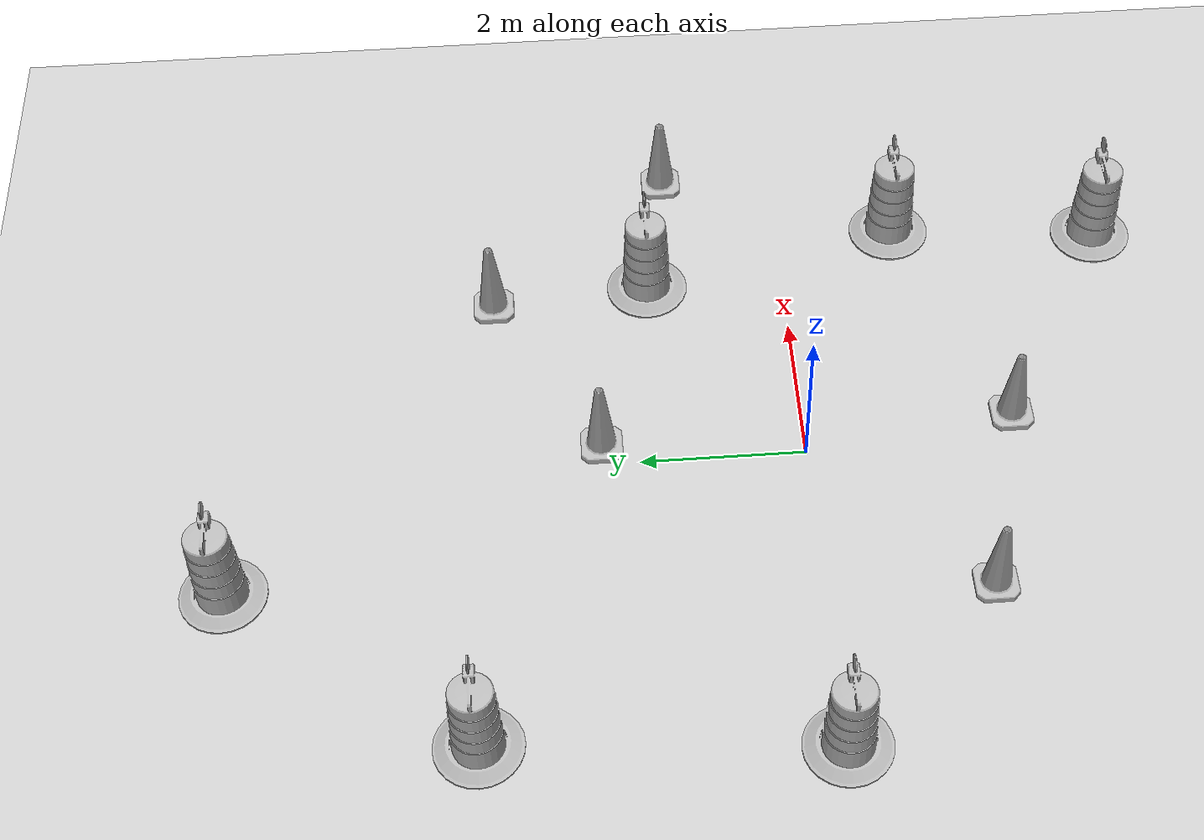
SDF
<sdf version="1.7">
 <world name="default">
  <light name="sun" type="directional">
   <pose>0 0 10 0 -0 0</pose>
   <diffuse>0.8 0.8 0.8 1</diffuse>
   <specular>0.2 0.2 0.2 1</specular>
   <attenuation>
    <range>1000</range>
    <constant>0.9</constant>
    <linear>0.01</linear>
    <quadratic>0.001</quadratic>
   </attenuation>
   <direction>-0.5 0.1 -0.9</direction>
   <spot><inner_angle>0</inner_angle><outer_angle>0</outer_angle><falloff>0</falloff></spot>
  </light>
  <model name="ground_plane">
   <static>1</static>
   <link name="link">
    <collision name="collision">
     <geometry><plane><normal>0 0 1</normal><size>100 100</size></plane></geometry>
     <surface>
      <contact><collide_bitmask>65535</collide_bitmask></contact>
      <friction><ode><mu>100</mu><mu2>50</mu2></ode></friction>
     </surface>
    </collision>
    <visual name="visual">
     <cast_shadows>0</cast_shadows>
     <geometry><plane><normal>0 0 1</normal><size>100 100</size></plane></geometry>
     <material>
      <script><uri>file://media/materials/scripts/gazebo.material</uri><name>Gazebo/Grey</name></script>
     </material>
    </visual>
   </link>
  </model>
  <gravity>0 0 -9.8</gravity>
  <magnetic_field>6e-06 2.3e-05 -4.2e-05</magnetic_field>
  <atmosphere type="adiabatic"/>
  <physics type="ode">
   <max_step_size>0.001</max_step_size>
   <real_time_factor>1</real_time_factor>
   <real_time_update_rate>1000</real_time_update_rate>
  </physics>
  <scene><ambient>0.4 0.4 0.4 1</ambient><background>0.7 0.7 0.7 1</background><shadows>1</shadows></scene>
  <spherical_coordinates>
   <surface_model>EARTH_WGS84</surface_model>
   <latitude_deg>0</latitude_deg>
   <longitude_deg>0</longitude_deg>
   <elevation>0</elevation>
   <heading_deg>0</heading_deg>
  </spherical_coordinates>
  <model name="Construction Cone">
   <link name="link">
    <collision name="collision">
     <geometry>
      <mesh><scale>10 10 10</scale><uri>model://construction_cone/meshes/construction_cone.dae</uri></mesh>
     </geometry>
    </collision>
    <visual name="visual">
     <geometry>
      <mesh><scale>10 10 10</scale><uri>model://construction_cone/meshes/construction_cone.dae</uri></mesh>
     </geometry>
    </visual>
    <inertial>
     <inertia><ixx>1</ixx><ixy>0</ixy><ixz>0</ixz><iyy>1</iyy><iyz>0</iyz><izz>1</izz></inertia>
     <mass>1</mass>
    </inertial>
   </link>
   <pose>2.59299 3.70331 0 0 -0 0</pose>
  </model>
  <model name="Construction Cone_0">
   <link name="link">
    <collision name="collision">
     <geometry>
      <mesh><scale>10 10 10</scale><uri>model://construction_cone/meshes/construction_cone.dae</uri></mesh>
     </geometry>
    </collision>
    <visual name="visual">
     <geometry>
      <mesh><scale>10 10 10</scale><uri>model://construction_cone/meshes/construction_cone.dae</uri></mesh>
     </geometry>
    </visual>
    <inertial>
     <inertia><ixx>1</ixx><ixy>0</ixy><ixz>0</ixz><iyy>1</iyy><iyz>0</iyz><izz>1</izz></inertia>
     <mass>1</mass>
    </inertial>
   </link>
   <pose>0.279163 2.45162 0 0 -0 0</pose>
  </model>
  <model name="Construction Barrel">
   <link name="link">
    <inertial>
     <pose>0 0 0.4 0 -0 0</pose>
     <mass>500</mass>
     <inertia><ixx>51.2096</ixx><iyy>51.2096</iyy><izz>25</izz><ixy>0</ixy><ixz>0</ixz><iyz>0</iyz></inertia>
    </inertial>
    <collision name="collision">
     <geometry><mesh><uri>model://construction_barrel/meshes/construction_barrel.dae</uri></mesh></geometry>
    </collision>
    <visual name="visual">
     <geometry><mesh><uri>model://construction_barrel/meshes/construction_barrel.dae</uri></mesh></geometry>
    </visual>
   </link>
   <pose>3.53211 -1.48402 0 0 -0 0</pose>
  </model>
  <model name="Construction Cone_clone">
   <link name="link">
    <collision name="collision">
     <geometry>
      <mesh><scale>10 10 10</scale><uri>model://construction_cone/meshes/construction_cone.dae</uri></mesh>
     </geometry>
    </collision>
    <visual name="visual">
     <geometry>
      <mesh><scale>10 10 10</scale><uri>model://construction_cone/meshes/construction_cone.dae</uri></mesh>
     </geometry>
    </visual>
    <inertial>
     <inertia><ixx>1</ixx><ixy>0</ixy><ixz>0</ixz><iyy>1</iyy><iyz>0</iyz><izz>1</izz></inertia>
     <mass>1</mass>
    </inertial>
   </link>
   <pose>4.60863 1.44109 0 0 -0 0</pose>
  </model>
  <model name="Construction Cone_clone_0">
   <link name="link">
    <collision name="collision">
     <geometry>
      <mesh><scale>10 10 10</scale><uri>model://construction_cone/meshes/construction_cone.dae</uri></mesh>
     </geometry>
    </collision>
    <visual name="visual">
     <geometry>
      <mesh><scale>10 10 10</scale><uri>model://construction_cone/meshes/construction_cone.dae</uri></mesh>
     </geometry>
    </visual>
    <inertial>
     <inertia><ixx>1</ixx><ixy>0</ixy><ixz>0</ixz><iyy>1</iyy><iyz>0</iyz><izz>1</izz></inertia>
     <mass>1</mass>
    </inertial>
   </link>
   <pose>-2.04887 -1.95717 0 0 -0 0</pose>
  </model>
  <model name="Construction Cone_clone_1">
   <link name="link">
    <collision name="collision">
     <geometry>
      <mesh><scale>10 10 10</scale><uri>model://construction_cone/meshes/construction_cone.dae</uri></mesh>
     </geometry>
    </collision>
    <visual name="visual">
     <geometry>
      <mesh><scale>10 10 10</scale><uri>model://construction_cone/meshes/construction_cone.dae</uri></mesh>
     </geometry>
    </visual>
    <inertial>
     <inertia><ixx>1</ixx><ixy>0</ixy><ixz>0</ixz><iyy>1</iyy><iyz>0</iyz><izz>1</izz></inertia>
     <mass>1</mass>
    </inertial>
   </link>
   <pose>0.389362 -2.56594 0 0 -0 0</pose>
  </model>
  <model name="Construction Barrel_clone">
   <link name="link">
    <inertial>
     <pose>0 0 0.4 0 -0 0</pose>
     <mass>500</mass>
     <inertia><ixx>51.2096</ixx><iyy>51.2096</iyy><izz>25</izz><ixy>0</ixy><ixz>0</ixz><iyz>0</iyz></inertia>
    </inertial>
    <collision name="collision">
     <geometry><mesh><uri>model://construction_barrel/meshes/construction_barrel.dae</uri></mesh></geometry>
    </collision>
    <visual name="visual">
     <geometry><mesh><uri>model://construction_barrel/meshes/construction_barrel.dae</uri></mesh></geometry>
    </visual>
   </link>
   <pose>2.78529 1.74149 0 0 -0 0</pose>
  </model>
  <model name="Construction Barrel_clone_0">
   <link name="link">
    <inertial>
     <pose>0 0 0.4 0 -0 0</pose>
     <mass>500</mass>
     <inertia><ixx>51.2096</ixx><iyy>51.2096</iyy><izz>25</izz><ixy>0</ixy><ixz>0</ixz><iyz>0</iyz></inertia>
    </inertial>
    <collision name="collision">
     <geometry><mesh><uri>model://construction_barrel/meshes/construction_barrel.dae</uri></mesh></geometry>
    </collision>
    <visual name="visual">
     <geometry><mesh><uri>model://construction_barrel/meshes/construction_barrel.dae</uri></mesh></geometry>
    </visual>
   </link>
   <pose>-3.70167 3.99554 0 0 -0 0</pose>
  </model>
  <model name="Construction Barrel_clone_1">
   <link name="link">
    <inertial>
     <pose>0 0 0.4 0 -0 0</pose>
     <mass>500</mass>
     <inertia><ixx>51.2096</ixx><iyy>51.2096</iyy><izz>25</izz><ixy>0</ixy><ixz>0</ixz><iyz>0</iyz></inertia>
    </inertial>
    <collision name="collision">
     <geometry><mesh><uri>model://construction_barrel/meshes/construction_barrel.dae</uri></mesh></geometry>
    </collision>
    <visual name="visual">
     <geometry><mesh><uri>model://construction_barrel/meshes/construction_barrel.dae</uri></mesh></geometry>
    </visual>
   </link>
   <pose>-4 0 0 0 -0 0</pose>
  </model>
  <model name="Construction Barrel_clone_2">
   <link name="link">
    <inertial>
     <pose>0 0 0.4 0 -0 0</pose>
     <mass>500</mass>
     <inertia><ixx>51.2096</ixx><iyy>51.2096</iyy><izz>25</izz><ixy>0</ixy><ixz>0</ixz><iyz>0</iyz></inertia>
    </inertial>
    <collision name="collision">
     <geometry><mesh><uri>model://construction_barrel/meshes/construction_barrel.dae</uri></mesh></geometry>
    </collision>
    <visual name="visual">
     <geometry><mesh><uri>model://construction_barrel/meshes/construction_barrel.dae</uri></mesh></geometry>
    </visual>
   </link>
   <pose>3.28181 -4.11705 0 0 -0 0</pose>
  </model>
  <model name="Construction Barrel_clone_3">
   <link name="link">
    <inertial>
     <pose>0 0 0.4 0 -0 0</pose>
     <mass>500</mass>
     <inertia><ixx>51.2096</ixx><iyy>51.2096</iyy><izz>25</izz><ixy>0</ixy><ixz>0</ixz><iyz>0</iyz></inertia>
    </inertial>
    <collision name="collision">
     <geometry><mesh><uri>model://construction_barrel/meshes/construction_barrel.dae</uri></mesh></geometry>
    </collision>
    <visual name="visual">
     <geometry><mesh><uri>model://construction_barrel/meshes/construction_barrel.dae</uri></mesh></geometry>
    </visual>
   </link>
   <pose>-1.52454 6.87591 0 0 -0 0</pose>
  </model>
 </world>
</sdf>
